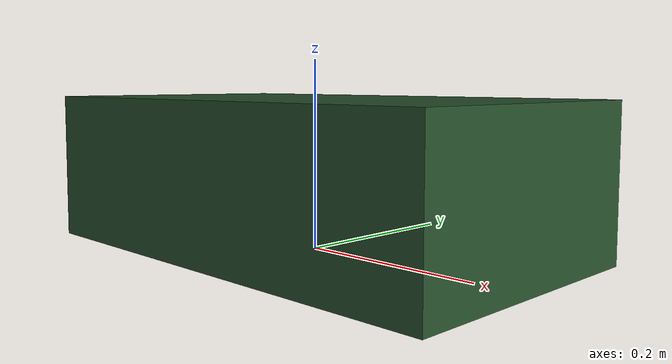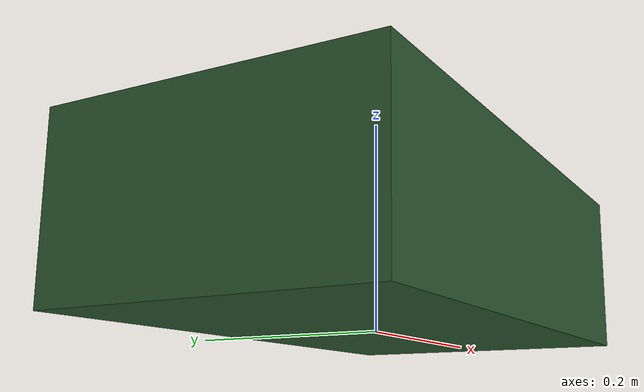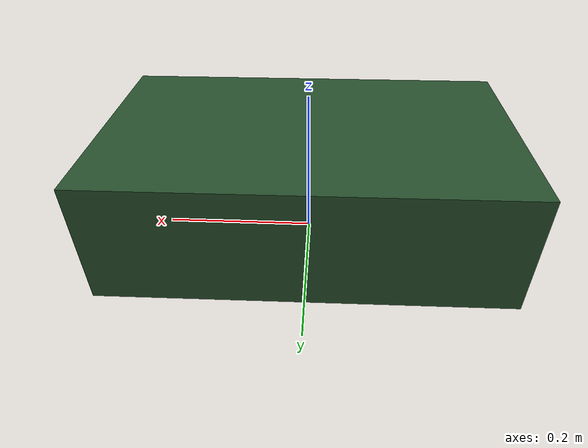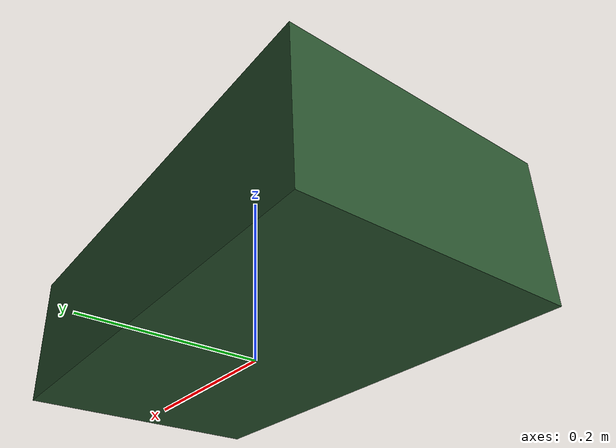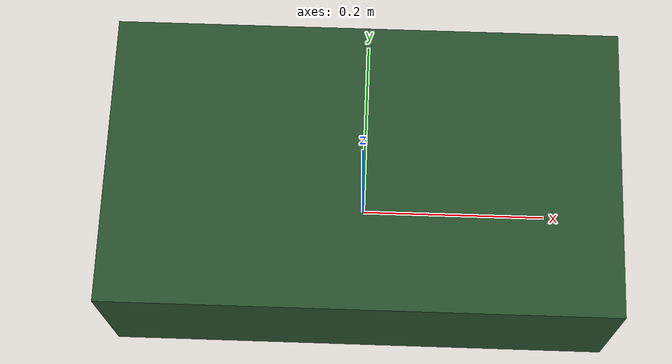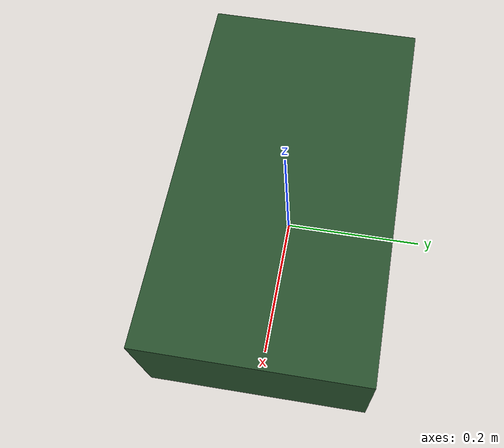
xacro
<?xml version="1.0"?>
<robot xmlns:xacro="http://www.ros.org/wiki/xacro" name="adom_vehicle">
  <!-- Measure these values on the physical vehicle before autonomous testing. -->
  <xacro:arg name="wheelbase" default="0.33"/>
  <xacro:arg name="track_width" default="0.26"/>
  <xacro:arg name="body_length" default="0.52"/>
  <xacro:arg name="body_width" default="0.30"/>
  <xacro:arg name="body_height" default="0.16"/>
  <xacro:arg name="zed_x" default="0.12"/>
  <xacro:arg name="zed_y" default="0.0"/>
  <!-- Measured optical-center height above ground (verified 2026-08-12). -->
  <xacro:arg name="zed_z" default="0.21"/>
  <xacro:arg name="zed_pitch_deg" default="-9.9981"/>
  <xacro:arg name="gnss_x" default="0.0"/>
  <xacro:arg name="gnss_y" default="0.0"/>
  <xacro:arg name="gnss_z" default="0.30"/>

  <!-- Expose command-line xacro arguments as expression variables. -->
  <xacro:property name="wheelbase" value="$(arg wheelbase)"/>
  <xacro:property name="track_width" value="$(arg track_width)"/>
  <xacro:property name="body_length" value="$(arg body_length)"/>
  <xacro:property name="body_width" value="$(arg body_width)"/>
  <xacro:property name="body_height" value="$(arg body_height)"/>
  <xacro:property name="zed_x" value="$(arg zed_x)"/>
  <xacro:property name="zed_y" value="$(arg zed_y)"/>
  <xacro:property name="zed_z" value="$(arg zed_z)"/>
  <xacro:property name="zed_pitch_deg" value="$(arg zed_pitch_deg)"/>
  <xacro:property name="gnss_x" value="$(arg gnss_x)"/>
  <xacro:property name="gnss_y" value="$(arg gnss_y)"/>
  <xacro:property name="gnss_z" value="$(arg gnss_z)"/>

  <link name="base_footprint"/>
  <link name="base_link">
    <visual>
      <origin xyz="0 0 ${body_height / 2.0}"/>
      <geometry><box size="${body_length} ${body_width} ${body_height}"/></geometry>
      <material name="adom_green"><color rgba="0.16 0.32 0.18 1"/></material>
    </visual>
    <collision>
      <origin xyz="0 0 ${body_height / 2.0}"/>
      <geometry><box size="${body_length} ${body_width} ${body_height}"/></geometry>
    </collision>
  </link>
  <joint name="base_footprint_joint" type="fixed">
    <parent link="base_footprint"/><child link="base_link"/>
  </joint>

  <link name="zed_camera_link"/>
  <joint name="zed_mount_joint" type="fixed">
    <!-- URDF rpy requires radians, so convert the degree-facing mount setting here. -->
    <origin xyz="${zed_x} ${zed_y} ${zed_z}" rpy="0 ${zed_pitch_deg * pi / 180.0} 0"/>
    <parent link="base_link"/><child link="zed_camera_link"/>
  </joint>

  <link name="gnss_link"/>
  <joint name="gnss_mount_joint" type="fixed">
    <origin xyz="${gnss_x} ${gnss_y} ${gnss_z}"/>
    <parent link="base_link"/><child link="gnss_link"/>
  </joint>
</robot>
